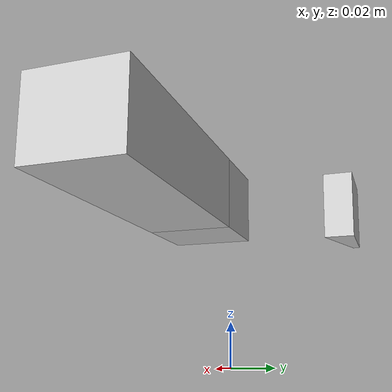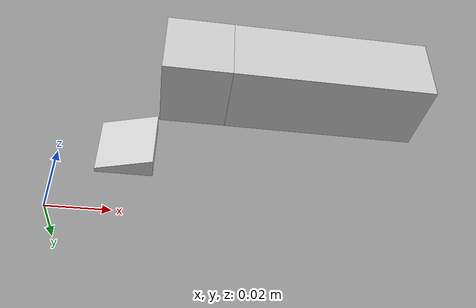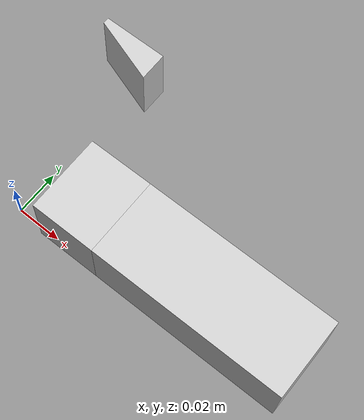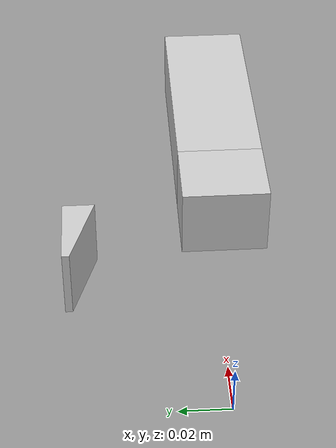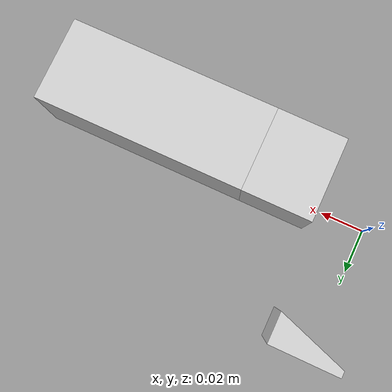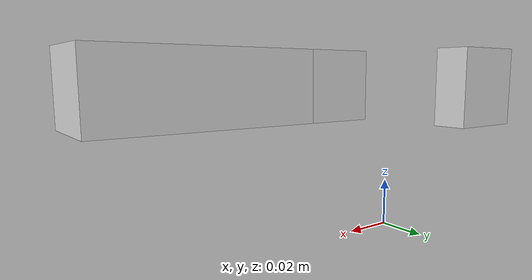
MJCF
<mujoco>
    <option integrator="implicitfast" impratio="20" noslip_iterations="5" cone="elliptic">
        <flag multiccd="enable"/>
    </option>

    <asset>

   <!-- p block -->
        <mesh name="p_block1" file="join_assets/pBlock/Part Studio 1 - Part 1.stl" scale="0.001 0.001 0.001"/>
        <mesh name="p_block2" file="join_assets/pBlock/Part Studio 1 - Part 2.stl" scale="0.001 0.001 0.001"/>
        <mesh name="p_block3" file="join_assets/pBlock/Part Studio 1 - Part 3.stl" scale="0.001 0.001 0.001"/>
        <mesh name="p_block4" file="join_assets/pBlock/Part Studio 1 - Part 4.stl" scale="0.001 0.001 0.001"/>
        <mesh name="p_block5" file="join_assets/pBlock/Part Studio 1 - Part 5.stl" scale="0.001 0.001 0.001"/>

    </asset>
    <default>
        <default class="visual">
            <geom type="mesh" mass="0" group="2" material="black" contype="0" conaffinity="0"/>
        </default>
        <default class="collision">
            <geom group="3" type="capsule" condim="6" friction="1 5e-3 5e-4" solref=".01 1" contype="1" conaffinity="2"/>
        </default>
    </default>

    <worldbody>

        <body name="pblock" pos="0 0 0.05" euler="0 0  0">
            <joint name="pblock_joint" type="free" frictionloss="0.001" damping="1"/>

            <geom type="mesh" mesh="p_block1" rgba="0.8 0.8 0.8 1" group="1" contype="0" conaffinity="0"/>
            <geom  size="0.0375 0.015 0.0125"  pos="0.09255 0.002 0.0125"  rgba="0 0.5 0 0"  type="box" friction="3.0 0.1 0.1" solref="0.003 1"
      solimp="0.95 0.99 0.0005"
      condim="4"
      name = "test"
      group ="3"/>

            <geom type="mesh" mesh="p_block2" rgba="0.8 0.8 0.8 1" group="1" contype="0" conaffinity="0"/>
            <geom type="mesh" mesh="p_block2" class="collision"  friction="1 0.5 0.5"   />

            <geom type="mesh" mesh="p_block3" rgba="0.8 0.8 0.8 1" name="block_peg" group="1" contype="0" conaffinity="0"/>
            <geom type="mesh" mesh="p_block3" class="collision"  friction="1 0.5 0.5"  />

        </body>

    </worldbody>
</mujoco>
